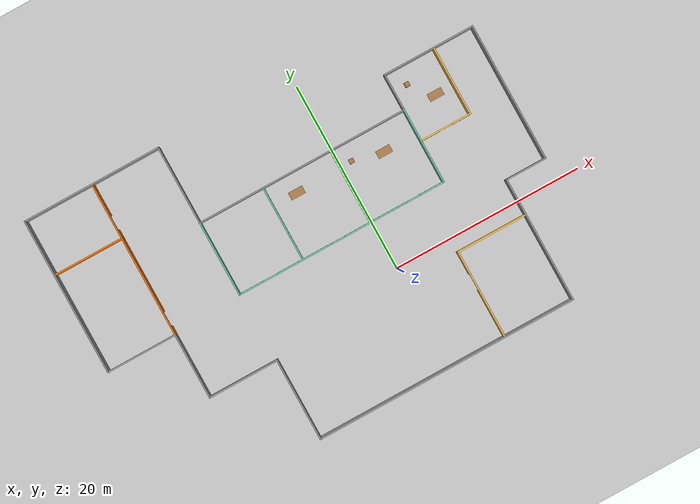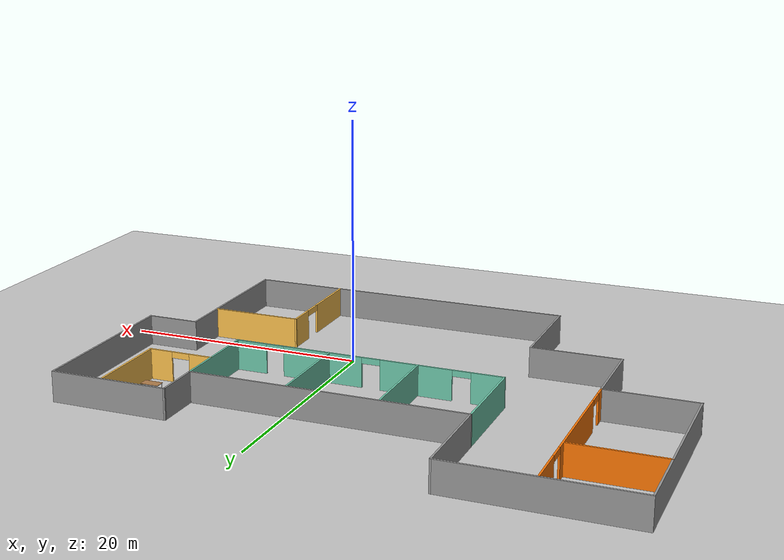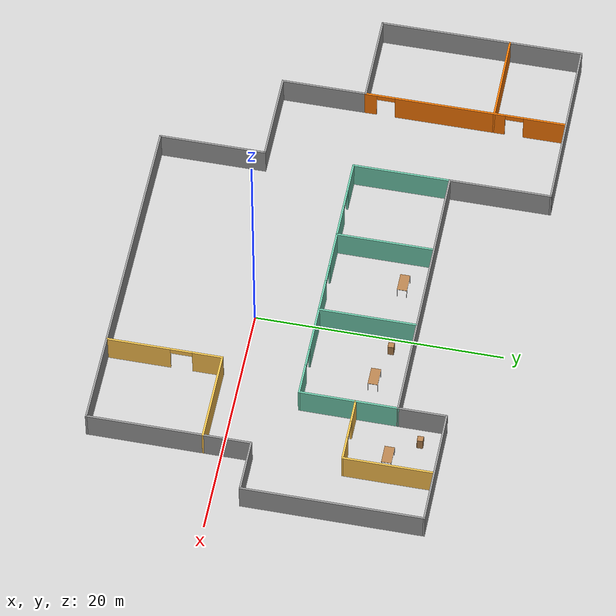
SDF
<sdf version="1.6">
 <world name="default">
  <model name="ground_plane">
   <static>1</static>
   <link name="link">
    <collision name="collision">
     <geometry><plane><normal>0 0 1</normal><size>100 100</size></plane></geometry>
     <surface><friction><ode><mu>100</mu><mu2>50</mu2></ode></friction></surface>
    </collision>
    <visual name="visual">
     <cast_shadows>0</cast_shadows>
     <geometry><plane><normal>0 0 1</normal><size>100 100</size></plane></geometry>
     <material>
      <script><uri>file://media/materials/scripts/gazebo.material</uri><name>Gazebo/Grey</name></script>
     </material>
    </visual>
   </link>
  </model>
  <model name="model">
   <pose>-5.7541 5.2784 0 0 -0 0</pose>
   <link name="Wall_10">
    <collision name="Wall_10_Collision">
     <geometry><box><size>16.6341 0.15 2.5</size></box></geometry>
     <pose>0 0 1.25 0 -0 0</pose>
    </collision>
    <visual name="Wall_10_Visual">
     <pose>0 0 1.25 0 -0 0</pose>
     <geometry><box><size>16.6341 0.15 2.5</size></box></geometry>
     <material>
      <script><uri>file://media/materials/scripts/gazebo.material</uri><name>Gazebo/Grey</name></script>
      <ambient>1 1 1 1</ambient>
     </material>
     <meta><layer>0</layer></meta>
    </visual>
    <pose>-23.275 7.725 0 0 0 -1.57079</pose>
   </link>
   <link name="Wall_11">
    <collision name="Wall_11_Collision">
     <geometry><box><size>7.5 0.15 2.5</size></box></geometry>
     <pose>0 0 1.25 0 -0 0</pose>
    </collision>
    <visual name="Wall_11_Visual">
     <pose>0 0 1.25 0 -0 0</pose>
     <geometry><box><size>7.5 0.15 2.5</size></box></geometry>
     <material>
      <script><uri>file://media/materials/scripts/gazebo.material</uri><name>Gazebo/Grey</name></script>
      <ambient>1 1 1 1</ambient>
     </material>
     <meta><layer>0</layer></meta>
    </visual>
    <pose>-19.6 -0.517 0 0 -0 1.5e-05</pose>
   </link>
   <link name="Wall_12">
    <collision name="Wall_12_Collision">
     <geometry><box><size>7 0.15 2.5</size></box></geometry>
     <pose>0 0 1.25 0 -0 0</pose>
    </collision>
    <visual name="Wall_12_Visual">
     <pose>0 0 1.25 0 -0 0</pose>
     <geometry><box><size>7 0.15 2.5</size></box></geometry>
     <material>
      <script><uri>file://media/materials/scripts/gazebo.material</uri><name>Gazebo/Grey</name></script>
      <ambient>1 1 1 1</ambient>
     </material>
     <meta><layer>0</layer></meta>
    </visual>
    <pose>-15.925 -3.942 0 0 0 -1.57077</pose>
   </link>
   <link name="Wall_13">
    <collision name="Wall_13_Collision">
     <geometry><box><size>7.5 0.15 2.5</size></box></geometry>
     <pose>0 0 1.25 0 -0 0</pose>
    </collision>
    <visual name="Wall_13_Visual">
     <pose>0 0 1.25 0 -0 0</pose>
     <geometry><box><size>7.5 0.15 2.5</size></box></geometry>
     <material>
      <script><uri>file://media/materials/scripts/gazebo.material</uri><name>Gazebo/Grey</name></script>
      <ambient>1 1 1 1</ambient>
     </material>
     <meta><layer>0</layer></meta>
    </visual>
    <pose>-12.2499 -7.36705 0 0 -0 0</pose>
   </link>
   <link name="Wall_14">
    <collision name="Wall_14_Collision">
     <geometry><box><size>8.75 0.15 2.5</size></box></geometry>
     <pose>0 0 1.25 0 -0 0</pose>
    </collision>
    <visual name="Wall_14_Visual">
     <pose>0 0 1.25 0 -0 0</pose>
     <geometry><box><size>8.75 0.15 2.5</size></box></geometry>
     <material>
      <script><uri>file://media/materials/scripts/gazebo.material</uri><name>Gazebo/Grey</name></script>
      <ambient>1 1 1 1</ambient>
     </material>
     <meta><layer>0</layer></meta>
    </visual>
    <pose>-8.57488 -11.6671 0 0 0 -1.5708</pose>
   </link>
   <link name="Wall_15">
    <collision name="Wall_15_Collision">
     <geometry><box><size>27.75 0.15 2.5</size></box></geometry>
     <pose>0 0 1.25 0 -0 0</pose>
    </collision>
    <visual name="Wall_15_Visual">
     <pose>0 0 1.25 0 -0 0</pose>
     <geometry><box><size>27.75 0.15 2.5</size></box></geometry>
     <material>
      <script><uri>file://media/materials/scripts/gazebo.material</uri><name>Gazebo/Grey</name></script>
      <ambient>1 1 1 1</ambient>
     </material>
     <meta><layer>0</layer></meta>
    </visual>
    <pose>5.22512 -15.9671 0 0 -0 0</pose>
   </link>
   <link name="Wall_17">
    <collision name="Wall_17_Collision">
     <geometry><box><size>13.25 0.15 2.5</size></box></geometry>
     <pose>0 0 1.25 0 -0 0</pose>
    </collision>
    <visual name="Wall_17_Visual">
     <pose>0 0 1.25 0 -0 0</pose>
     <geometry><box><size>13.25 0.15 2.5</size></box></geometry>
     <material>
      <script><uri>file://media/materials/scripts/gazebo.material</uri><name>Gazebo/Grey</name></script>
      <ambient>1 1 1 1</ambient>
     </material>
     <meta><layer>0</layer></meta>
    </visual>
    <pose>19.025 -9.417 0 0 -0 1.57081</pose>
   </link>
   <link name="Wall_18">
    <collision name="Wall_18_Collision">
     <geometry><box><size>4.4 0.15 2.5</size></box></geometry>
     <pose>0 0 1.25 0 -0 0</pose>
    </collision>
    <visual name="Wall_18_Visual">
     <pose>0 0 1.25 0 -0 0</pose>
     <geometry><box><size>4.4 0.15 2.5</size></box></geometry>
     <material>
      <script><uri>file://media/materials/scripts/gazebo.material</uri><name>Gazebo/Grey</name></script>
      <ambient>1 1 1 1</ambient>
     </material>
     <meta><layer>0</layer></meta>
    </visual>
    <pose>21.15 -2.86694 0 0 -0 0</pose>
   </link>
   <link name="Wall_20">
    <collision name="Wall_20_Collision">
     <geometry><box><size>8 0.15 2.5</size></box></geometry>
     <pose>0 0 1.25 0 -0 0</pose>
    </collision>
    <visual name="Wall_20_Visual">
     <pose>0 0 1.25 0 -0 0</pose>
     <geometry><box><size>8 0.15 2.5</size></box></geometry>
     <material>
      <script><uri>file://media/materials/scripts/gazebo.material</uri><name>Gazebo/Grey</name></script>
      <ambient>0.435294 0.796078 0.67451 1</ambient>
     </material>
     <meta><layer>0</layer></meta>
    </visual>
    <pose>-8.67504 3.79406 0 0 0 -1.5708</pose>
   </link>
   <link name="Wall_21">
    <pose>2.48846 -0.130945 0 0 -0 0</pose>
    <visual name="Wall_21_Visual_0">
     <pose>-9.88927 0 1.25 0 -0 0</pose>
     <geometry><box><size>2.69894 0.15 2.5</size></box></geometry>
     <material>
      <script><uri>file://media/materials/scripts/gazebo.material</uri><name>Gazebo/Grey</name></script>
      <ambient>0.435294 0.796078 0.67451 1</ambient>
     </material>
     <meta><layer>0</layer></meta>
    </visual>
    <collision name="Wall_21_Collision_0">
     <geometry><box><size>2.69894 0.15 2.5</size></box></geometry>
     <pose>-9.88927 0 1.25 0 -0 0</pose>
    </collision>
    <visual name="Wall_21_Visual_1">
     <pose>-4.08434 0 1.25 0 -0 0</pose>
     <geometry><box><size>5.91093 0.15 2.5</size></box></geometry>
     <material>
      <script><uri>file://media/materials/scripts/gazebo.material</uri><name>Gazebo/Grey</name></script>
      <ambient>0.435294 0.796078 0.67451 1</ambient>
     </material>
     <meta><layer>0</layer></meta>
    </visual>
    <collision name="Wall_21_Collision_1">
     <geometry><box><size>5.91093 0.15 2.5</size></box></geometry>
     <pose>-4.08434 0 1.25 0 -0 0</pose>
    </collision>
    <visual name="Wall_21_Visual_2">
     <pose>3.7245 0 1.25 0 -0 0</pose>
     <geometry><box><size>6.70674 0.15 2.5</size></box></geometry>
     <material>
      <script><uri>file://media/materials/scripts/gazebo.material</uri><name>Gazebo/Grey</name></script>
      <ambient>0.435294 0.796078 0.67451 1</ambient>
     </material>
     <meta><layer>0</layer></meta>
    </visual>
    <collision name="Wall_21_Collision_2">
     <geometry><box><size>6.70674 0.15 2.5</size></box></geometry>
     <pose>3.7245 0 1.25 0 -0 0</pose>
    </collision>
    <visual name="Wall_21_Visual_3">
     <pose>9.9083 0 1.25 0 -0 0</pose>
     <geometry><box><size>2.66088 0.15 2.5</size></box></geometry>
     <material>
      <script><uri>file://media/materials/scripts/gazebo.material</uri><name>Gazebo/Grey</name></script>
      <ambient>0.435294 0.796078 0.67451 1</ambient>
     </material>
     <meta><layer>0</layer></meta>
    </visual>
    <collision name="Wall_21_Collision_3">
     <geometry><box><size>2.66088 0.15 2.5</size></box></geometry>
     <pose>9.9083 0 1.25 0 -0 0</pose>
    </collision>
    <visual name="Wall_21_Visual_4">
     <pose>-7.7898 0 2.25 0 -0 0</pose>
     <geometry><box><size>1.5 0.15 0.5</size></box></geometry>
     <material>
      <script><uri>file://media/materials/scripts/gazebo.material</uri><name>Gazebo/Grey</name></script>
      <ambient>0.435294 0.796078 0.67451 1</ambient>
     </material>
     <meta><layer>0</layer></meta>
    </visual>
    <collision name="Wall_21_Collision_4">
     <geometry><box><size>1.5 0.15 0.5</size></box></geometry>
     <pose>-7.7898 0 2.25 0 -0 0</pose>
    </collision>
    <visual name="Wall_21_Visual_5">
     <pose>-0.378872 0 2.25 0 -0 0</pose>
     <geometry><box><size>1.5 0.15 0.5</size></box></geometry>
     <material>
      <script><uri>file://media/materials/scripts/gazebo.material</uri><name>Gazebo/Grey</name></script>
      <ambient>0.435294 0.796078 0.67451 1</ambient>
     </material>
     <meta><layer>0</layer></meta>
    </visual>
    <collision name="Wall_21_Collision_5">
     <geometry><box><size>1.5 0.15 0.5</size></box></geometry>
     <pose>-0.378872 0 2.25 0 -0 0</pose>
    </collision>
    <visual name="Wall_21_Visual_6">
     <pose>7.82787 0 2.25 0 -0 0</pose>
     <geometry><box><size>1.5 0.15 0.5</size></box></geometry>
     <material>
      <script><uri>file://media/materials/scripts/gazebo.material</uri><name>Gazebo/Grey</name></script>
      <ambient>0.435294 0.796078 0.67451 1</ambient>
     </material>
     <meta><layer>0</layer></meta>
    </visual>
    <collision name="Wall_21_Collision_6">
     <geometry><box><size>1.5 0.15 0.5</size></box></geometry>
     <pose>7.82787 0 2.25 0 -0 0</pose>
    </collision>
   </link>
   <link name="Wall_22">
    <collision name="Wall_22_Collision">
     <geometry><box><size>8.01356 0.15 2.5</size></box></geometry>
     <pose>0 0 1.25 0 -0 0</pose>
    </collision>
    <visual name="Wall_22_Visual">
     <pose>0 0 1.25 0 -0 0</pose>
     <geometry><box><size>8.01356 0.15 2.5</size></box></geometry>
     <material>
      <script><uri>file://media/materials/scripts/gazebo.material</uri><name>Gazebo/Grey</name></script>
      <ambient>0.435294 0.796078 0.67451 1</ambient>
     </material>
     <meta><layer>0</layer></meta>
    </visual>
    <pose>13.6635 3.80105 0 0 -0 1.56787</pose>
   </link>
   <link name="Wall_24">
    <collision name="Wall_24_Collision">
     <geometry><box><size>7.95 0.15 2.5</size></box></geometry>
     <pose>0 0 1.25 0 -0 0</pose>
    </collision>
    <visual name="Wall_24_Visual">
     <pose>0 0 1.25 0 -0 0</pose>
     <geometry><box><size>7.95 0.15 2.5</size></box></geometry>
     <material>
      <script><uri>file://media/materials/scripts/gazebo.material</uri><name>Gazebo/Grey</name></script>
      <ambient>0.435294 0.796078 0.67451 1</ambient>
     </material>
     <meta><layer>0</layer></meta>
    </visual>
    <pose>-1.75004 3.76905 0 0 0 -1.5708</pose>
   </link>
   <link name="Wall_26">
    <collision name="Wall_26_Collision">
     <geometry><box><size>7.945 0.15 2.5</size></box></geometry>
     <pose>0 0 1.25 0 -0 0</pose>
    </collision>
    <visual name="Wall_26_Visual">
     <pose>0 0 1.25 0 -0 0</pose>
     <geometry><box><size>7.945 0.15 2.5</size></box></geometry>
     <material>
      <script><uri>file://media/materials/scripts/gazebo.material</uri><name>Gazebo/Grey</name></script>
      <ambient>0.435294 0.796078 0.67451 1</ambient>
     </material>
     <meta><layer>0</layer></meta>
    </visual>
    <pose>5.64896 3.76655 0 0 0 -1.5708</pose>
   </link>
   <link name="Wall_28">
    <pose>-15.925 7.65806 0 0 -0 1.5708</pose>
    <visual name="Wall_28_Visual_0">
     <pose>-7.74683 0 1.25 0 -0 0</pose>
     <geometry><box><size>1.00633 0.15 2.5</size></box></geometry>
     <material>
      <script><uri>file://media/materials/scripts/gazebo.material</uri><name>Gazebo/Grey</name></script>
      <ambient>0.996078 0.47451 0.0196078 1</ambient>
     </material>
     <meta><layer>0</layer></meta>
    </visual>
    <collision name="Wall_28_Collision_0">
     <geometry><box><size>1.00633 0.15 2.5</size></box></geometry>
     <pose>-7.74683 0 1.25 0 -0 0</pose>
    </collision>
    <visual name="Wall_28_Visual_1">
     <pose>-1.21167 0 1.25 0 -0 0</pose>
     <geometry><box><size>9.06399 0.15 2.5</size></box></geometry>
     <material>
      <script><uri>file://media/materials/scripts/gazebo.material</uri><name>Gazebo/Grey</name></script>
      <ambient>0.996078 0.47451 0.0196078 1</ambient>
     </material>
     <meta><layer>0</layer></meta>
    </visual>
    <collision name="Wall_28_Collision_1">
     <geometry><box><size>9.06399 0.15 2.5</size></box></geometry>
     <pose>-1.21167 0 1.25 0 -0 0</pose>
    </collision>
    <visual name="Wall_28_Visual_2">
     <pose>6.53516 0 1.25 0 -0 0</pose>
     <geometry><box><size>3.42968 0.15 2.5</size></box></geometry>
     <material>
      <script><uri>file://media/materials/scripts/gazebo.material</uri><name>Gazebo/Grey</name></script>
      <ambient>0.996078 0.47451 0.0196078 1</ambient>
     </material>
     <meta><layer>0</layer></meta>
    </visual>
    <collision name="Wall_28_Collision_2">
     <geometry><box><size>3.42968 0.15 2.5</size></box></geometry>
     <pose>6.53516 0 1.25 0 -0 0</pose>
    </collision>
    <visual name="Wall_28_Visual_3">
     <pose>-6.49367 0 2.25 0 -0 0</pose>
     <geometry><box><size>1.5 0.15 0.5</size></box></geometry>
     <material>
      <script><uri>file://media/materials/scripts/gazebo.material</uri><name>Gazebo/Grey</name></script>
      <ambient>0.996078 0.47451 0.0196078 1</ambient>
     </material>
     <meta><layer>0</layer></meta>
    </visual>
    <collision name="Wall_28_Collision_3">
     <geometry><box><size>1.5 0.15 0.5</size></box></geometry>
     <pose>-6.49367 0 2.25 0 -0 0</pose>
    </collision>
    <visual name="Wall_28_Visual_4">
     <pose>4.07032 0 2.25 0 -0 0</pose>
     <geometry><box><size>1.5 0.15 0.5</size></box></geometry>
     <material>
      <script><uri>file://media/materials/scripts/gazebo.material</uri><name>Gazebo/Grey</name></script>
      <ambient>0.996078 0.47451 0.0196078 1</ambient>
     </material>
     <meta><layer>0</layer></meta>
    </visual>
    <collision name="Wall_28_Collision_4">
     <geometry><box><size>1.5 0.15 0.5</size></box></geometry>
     <pose>4.07032 0 2.25 0 -0 0</pose>
    </collision>
   </link>
   <link name="Wall_3">
    <collision name="Wall_3_Collision">
     <geometry><box><size>14.5999 0.15 2.5</size></box></geometry>
     <pose>0 0 1.25 0 -0 0</pose>
    </collision>
    <visual name="Wall_3_Visual">
     <pose>0 0 1.25 0 -0 0</pose>
     <geometry><box><size>14.5999 0.15 2.5</size></box></geometry>
     <material>
      <script><uri>file://media/materials/scripts/gazebo.material</uri><name>Gazebo/Grey</name></script>
      <ambient>1 1 1 1</ambient>
     </material>
     <meta><layer>0</layer></meta>
    </visual>
    <pose>23.275 4.35806 0 0 -0 1.5708</pose>
   </link>
   <link name="Wall_30">
    <collision name="Wall_30_Collision">
     <geometry><box><size>7.471 0.15 2.5</size></box></geometry>
     <pose>0 0 1.25 0 -0 0</pose>
    </collision>
    <visual name="Wall_30_Visual">
     <pose>0 0 1.25 0 -0 0</pose>
     <geometry><box><size>7.471 0.15 2.5</size></box></geometry>
     <material>
      <script><uri>file://media/materials/scripts/gazebo.material</uri><name>Gazebo/Grey</name></script>
      <ambient>0.996078 0.47451 0.0196078 1</ambient>
     </material>
     <meta><layer>0</layer></meta>
    </visual>
    <pose>-19.5855 10.0661 0 0 -0 0</pose>
   </link>
   <link name="Wall_32">
    <collision name="Wall_32_Collision">
     <geometry><box><size>7.25 0.15 2.5</size></box></geometry>
     <pose>0 0 1.25 0 -0 0</pose>
    </collision>
    <visual name="Wall_32_Visual">
     <pose>0 0 1.25 0 -0 0</pose>
     <geometry><box><size>7.25 0.15 2.5</size></box></geometry>
     <material>
      <script><uri>file://media/materials/scripts/gazebo.material</uri><name>Gazebo/Grey</name></script>
      <ambient>1 0.764706 0.305882 1</ambient>
     </material>
     <meta><layer>0</layer></meta>
    </visual>
    <pose>19.033 7.91005 0 0 0 -1.5708</pose>
   </link>
   <link name="Wall_33">
    <pose>16.358 4.36006 0 0 -0 3.14159</pose>
    <visual name="Wall_33_Visual_0">
     <pose>-1.73876 0 1.25 0 -0 0</pose>
     <geometry><box><size>2.02248 0.15 2.5</size></box></geometry>
     <material>
      <script><uri>file://media/materials/scripts/gazebo.material</uri><name>Gazebo/Grey</name></script>
      <ambient>1 0.764706 0.305882 1</ambient>
     </material>
     <meta><layer>0</layer></meta>
    </visual>
    <collision name="Wall_33_Collision_0">
     <geometry><box><size>2.02248 0.15 2.5</size></box></geometry>
     <pose>-1.73876 0 1.25 0 -0 0</pose>
    </collision>
    <visual name="Wall_33_Visual_1">
     <pose>1.76124 0 1.25 0 -0 0</pose>
     <geometry><box><size>1.97752 0.15 2.5</size></box></geometry>
     <material>
      <script><uri>file://media/materials/scripts/gazebo.material</uri><name>Gazebo/Grey</name></script>
      <ambient>1 0.764706 0.305882 1</ambient>
     </material>
     <meta><layer>0</layer></meta>
    </visual>
    <collision name="Wall_33_Collision_1">
     <geometry><box><size>1.97752 0.15 2.5</size></box></geometry>
     <pose>1.76124 0 1.25 0 -0 0</pose>
    </collision>
    <visual name="Wall_33_Visual_2">
     <pose>0.022481 0 2.25 0 -0 0</pose>
     <geometry><box><size>1.5 0.15 0.5</size></box></geometry>
     <material>
      <script><uri>file://media/materials/scripts/gazebo.material</uri><name>Gazebo/Grey</name></script>
      <ambient>1 0.764706 0.305882 1</ambient>
     </material>
     <meta><layer>0</layer></meta>
    </visual>
    <collision name="Wall_33_Collision_2">
     <geometry><box><size>1.5 0.15 0.5</size></box></geometry>
     <pose>0.022481 0 2.25 0 -0 0</pose>
    </collision>
   </link>
   <link name="Wall_36">
    <collision name="Wall_36_Collision">
     <geometry><box><size>7.572 0.15 2.5</size></box></geometry>
     <pose>0 0 1.25 0 -0 0</pose>
    </collision>
    <visual name="Wall_36_Visual">
     <pose>0 0 1.25 0 -0 0</pose>
     <geometry><box><size>7.572 0.15 2.5</size></box></geometry>
     <material>
      <script><uri>file://media/materials/scripts/gazebo.material</uri><name>Gazebo/Grey</name></script>
      <ambient>1 0.764706 0.305882 1</ambient>
     </material>
     <meta><layer>0</layer></meta>
    </visual>
    <pose>15.314 -6.68694 0 0 -0 0</pose>
   </link>
   <link name="Wall_38">
    <pose>11.603 -11.3269 0 0 0 -1.5708</pose>
    <visual name="Wall_38_Visual_0">
     <pose>-3.47456 0 1.25 0 -0 0</pose>
     <geometry><box><size>2.48088 0.15 2.5</size></box></geometry>
     <material>
      <script><uri>file://media/materials/scripts/gazebo.material</uri><name>Gazebo/Grey</name></script>
      <ambient>1 0.764706 0.305882 1</ambient>
     </material>
     <meta><layer>0</layer></meta>
    </visual>
    <collision name="Wall_38_Collision_0">
     <geometry><box><size>2.48088 0.15 2.5</size></box></geometry>
     <pose>-3.47456 0 1.25 0 -0 0</pose>
    </collision>
    <visual name="Wall_38_Visual_1">
     <pose>2.11544 0 1.25 0 -0 0</pose>
     <geometry><box><size>5.19912 0.15 2.5</size></box></geometry>
     <material>
      <script><uri>file://media/materials/scripts/gazebo.material</uri><name>Gazebo/Grey</name></script>
      <ambient>1 0.764706 0.305882 1</ambient>
     </material>
     <meta><layer>0</layer></meta>
    </visual>
    <collision name="Wall_38_Collision_1">
     <geometry><box><size>5.19912 0.15 2.5</size></box></geometry>
     <pose>2.11544 0 1.25 0 -0 0</pose>
    </collision>
    <visual name="Wall_38_Visual_2">
     <pose>-1.35912 0 2.25 0 -0 0</pose>
     <geometry><box><size>1.75 0.15 0.5</size></box></geometry>
     <material>
      <script><uri>file://media/materials/scripts/gazebo.material</uri><name>Gazebo/Grey</name></script>
      <ambient>1 0.764706 0.305882 1</ambient>
     </material>
     <meta><layer>0</layer></meta>
    </visual>
    <collision name="Wall_38_Collision_2">
     <geometry><box><size>1.75 0.15 0.5</size></box></geometry>
     <pose>-1.35912 0 2.25 0 -0 0</pose>
    </collision>
   </link>
   <link name="Wall_5">
    <collision name="Wall_5_Collision">
     <geometry><box><size>9.75 0.15 2.5</size></box></geometry>
     <pose>0 0 1.25 0 -0 0</pose>
    </collision>
    <visual name="Wall_5_Visual">
     <pose>0 0 1.25 0 -0 0</pose>
     <geometry><box><size>9.75 0.15 2.5</size></box></geometry>
     <material>
      <script><uri>file://media/materials/scripts/gazebo.material</uri><name>Gazebo/Grey</name></script>
      <ambient>1 1 1 1</ambient>
     </material>
     <meta><layer>0</layer></meta>
    </visual>
    <pose>18.475 11.583 0 0 0 -3.14158</pose>
   </link>
   <link name="Wall_6">
    <collision name="Wall_6_Collision">
     <geometry><box><size>4 0.15 2.5</size></box></geometry>
     <pose>0 0 1.25 0 -0 0</pose>
    </collision>
    <visual name="Wall_6_Visual">
     <pose>0 0 1.25 0 -0 0</pose>
     <geometry><box><size>4 0.15 2.5</size></box></geometry>
     <material>
      <script><uri>file://media/materials/scripts/gazebo.material</uri><name>Gazebo/Grey</name></script>
      <ambient>1 1 1 1</ambient>
     </material>
     <meta><layer>0</layer></meta>
    </visual>
    <pose>13.675 9.658 0 0 0 -1.57084</pose>
   </link>
   <link name="Wall_7">
    <collision name="Wall_7_Collision">
     <geometry><box><size>22.5 0.15 2.5</size></box></geometry>
     <pose>0 0 1.25 0 -0 0</pose>
    </collision>
    <visual name="Wall_7_Visual">
     <pose>0 0 1.25 0 -0 0</pose>
     <geometry><box><size>22.5 0.15 2.5</size></box></geometry>
     <material>
      <script><uri>file://media/materials/scripts/gazebo.material</uri><name>Gazebo/Grey</name></script>
      <ambient>1 1 1 1</ambient>
     </material>
     <meta><layer>0</layer></meta>
    </visual>
    <pose>2.49996 7.73306 0 0 -0 3.14159</pose>
   </link>
   <link name="Wall_8">
    <collision name="Wall_8_Collision">
     <geometry><box><size>8.384 0.15 2.5</size></box></geometry>
     <pose>0 0 1.25 0 -0 0</pose>
    </collision>
    <visual name="Wall_8_Visual">
     <pose>0 0 1.25 0 -0 0</pose>
     <geometry><box><size>8.384 0.15 2.5</size></box></geometry>
     <material>
      <script><uri>file://media/materials/scripts/gazebo.material</uri><name>Gazebo/Grey</name></script>
      <ambient>1 1 1 1</ambient>
     </material>
     <meta><layer>0</layer></meta>
    </visual>
    <pose>-8.67504 11.8501 0 0 -0 1.5708</pose>
   </link>
   <link name="Wall_9">
    <collision name="Wall_9_Collision">
     <geometry><box><size>14.75 0.15 2.5</size></box></geometry>
     <pose>0 0 1.25 0 -0 0</pose>
    </collision>
    <visual name="Wall_9_Visual">
     <pose>0 0 1.25 0 -0 0</pose>
     <geometry><box><size>14.75 0.15 2.5</size></box></geometry>
     <material>
      <script><uri>file://media/materials/scripts/gazebo.material</uri><name>Gazebo/Grey</name></script>
      <ambient>1 1 1 1</ambient>
     </material>
     <meta><layer>0</layer></meta>
    </visual>
    <pose>-15.975 15.9671 0 0 -0 3.14159</pose>
   </link>
   <static>1</static>
  </model>
  <model name="cabinet_0">
   <static>1</static>
   <link name="cabinet_bottom_plate">
    <inertial>
     <pose>0 0 -1 0 -0 0</pose>
     <inertia><ixx>2.05</ixx><ixy>0</ixy><ixz>0</ixz><iyy>2.05</iyy><iyz>0</iyz><izz>2.05</izz></inertia>
     <mass>25</mass>
    </inertial>
    <collision name="cabinet_bottom_plate_geom">
     <pose>0 0 0.01 0 -0 0</pose>
     <geometry><box><size>0.45 0.45 0.02</size></box></geometry>
    </collision>
    <visual name="cabinet_bottom_plate_geom_visual">
     <pose>0 0 0.01 0 -0 0</pose>
     <geometry><box><size>0.45 0.45 0.02</size></box></geometry>
     <material>
      <script><uri>file://media/materials/scripts/gazebo.material</uri><name>Gazebo/Wood</name></script>
     </material>
    </visual>
    <collision name="cabinet_bottom_plate_geom_cabinet_back_plate">
     <pose>0.235 0 0.51 0 -0 0</pose>
     <geometry><box><size>0.02 0.45 1.02</size></box></geometry>
    </collision>
    <visual name="cabinet_bottom_plate_geom_cabinet_back_plate_visual">
     <pose>0.235 0 0.51 0 -0 0</pose>
     <geometry><box><size>0.02 0.45 1.02</size></box></geometry>
     <material>
      <script><uri>file://media/materials/scripts/gazebo.material</uri><name>Gazebo/Wood</name></script>
     </material>
    </visual>
    <collision name="cabinet_bottom_plate_geom_cabinet_left_plate">
     <pose>0 0.235 0.51 0 -0 0</pose>
     <geometry><box><size>0.45 0.02 1.02</size></box></geometry>
    </collision>
    <visual name="cabinet_bottom_plate_geom_cabinet_left_plate_visual">
     <pose>0 0.235 0.51 0 -0 0</pose>
     <geometry><box><size>0.45 0.02 1.02</size></box></geometry>
     <material>
      <script><uri>file://media/materials/scripts/gazebo.material</uri><name>Gazebo/Wood</name></script>
     </material>
    </visual>
    <collision name="cabinet_bottom_plate_geom_cabinet_middle_plate">
     <pose>0 0 0.51 0 -0 0</pose>
     <geometry><box><size>0.45 0.45 0.02</size></box></geometry>
    </collision>
    <visual name="cabinet_bottom_plate_geom_cabinet_middle_plate_visual">
     <pose>0 0 0.51 0 -0 0</pose>
     <geometry><box><size>0.45 0.45 0.02</size></box></geometry>
     <material>
      <script><uri>file://media/materials/scripts/gazebo.material</uri><name>Gazebo/Wood</name></script>
     </material>
    </visual>
    <collision name="cabinet_bottom_plate_geom_cabinet_right_plate">
     <pose>0 -0.235 0.51 0 -0 0</pose>
     <geometry><box><size>0.45 0.02 1.02</size></box></geometry>
    </collision>
    <visual name="cabinet_bottom_plate_geom_cabinet_right_plate_visual">
     <pose>0 -0.235 0.51 0 -0 0</pose>
     <geometry><box><size>0.45 0.02 1.02</size></box></geometry>
     <material>
      <script><uri>file://media/materials/scripts/gazebo.material</uri><name>Gazebo/Wood</name></script>
     </material>
    </visual>
    <collision name="cabinet_bottom_plate_geom_cabinet_top_plate">
     <pose>0 0 1.01 0 -0 0</pose>
     <geometry><box><size>0.45 0.45 0.02</size></box></geometry>
    </collision>
    <visual name="cabinet_bottom_plate_geom_cabinet_top_plate_visual">
     <pose>0 0 1.01 0 -0 0</pose>
     <geometry><box><size>0.45 0.45 0.02</size></box></geometry>
     <material>
      <script><uri>file://media/materials/scripts/gazebo.material</uri><name>Gazebo/Wood</name></script>
     </material>
    </visual>
   </link>
   <pose>1.17551 11.2026 0 0 -0 0</pose>
  </model>
  <model name="cabinet_1">
   <static>1</static>
   <link name="cabinet_bottom_plate">
    <inertial>
     <pose>0 0 -1 0 -0 0</pose>
     <inertia><ixx>2.05</ixx><ixy>0</ixy><ixz>0</ixz><iyy>2.05</iyy><iyz>0</iyz><izz>2.05</izz></inertia>
     <mass>25</mass>
    </inertial>
    <collision name="cabinet_bottom_plate_geom">
     <pose>0 0 0.01 0 -0 0</pose>
     <geometry><box><size>0.45 0.45 0.02</size></box></geometry>
    </collision>
    <visual name="cabinet_bottom_plate_geom_visual">
     <pose>0 0 0.01 0 -0 0</pose>
     <geometry><box><size>0.45 0.45 0.02</size></box></geometry>
     <material>
      <script><uri>file://media/materials/scripts/gazebo.material</uri><name>Gazebo/Wood</name></script>
     </material>
    </visual>
    <collision name="cabinet_bottom_plate_geom_cabinet_back_plate">
     <pose>0.235 0 0.51 0 -0 0</pose>
     <geometry><box><size>0.02 0.45 1.02</size></box></geometry>
    </collision>
    <visual name="cabinet_bottom_plate_geom_cabinet_back_plate_visual">
     <pose>0.235 0 0.51 0 -0 0</pose>
     <geometry><box><size>0.02 0.45 1.02</size></box></geometry>
     <material>
      <script><uri>file://media/materials/scripts/gazebo.material</uri><name>Gazebo/Wood</name></script>
     </material>
    </visual>
    <collision name="cabinet_bottom_plate_geom_cabinet_left_plate">
     <pose>0 0.235 0.51 0 -0 0</pose>
     <geometry><box><size>0.45 0.02 1.02</size></box></geometry>
    </collision>
    <visual name="cabinet_bottom_plate_geom_cabinet_left_plate_visual">
     <pose>0 0.235 0.51 0 -0 0</pose>
     <geometry><box><size>0.45 0.02 1.02</size></box></geometry>
     <material>
      <script><uri>file://media/materials/scripts/gazebo.material</uri><name>Gazebo/Wood</name></script>
     </material>
    </visual>
    <collision name="cabinet_bottom_plate_geom_cabinet_middle_plate">
     <pose>0 0 0.51 0 -0 0</pose>
     <geometry><box><size>0.45 0.45 0.02</size></box></geometry>
    </collision>
    <visual name="cabinet_bottom_plate_geom_cabinet_middle_plate_visual">
     <pose>0 0 0.51 0 -0 0</pose>
     <geometry><box><size>0.45 0.45 0.02</size></box></geometry>
     <material>
      <script><uri>file://media/materials/scripts/gazebo.material</uri><name>Gazebo/Wood</name></script>
     </material>
    </visual>
    <collision name="cabinet_bottom_plate_geom_cabinet_right_plate">
     <pose>0 -0.235 0.51 0 -0 0</pose>
     <geometry><box><size>0.45 0.02 1.02</size></box></geometry>
    </collision>
    <visual name="cabinet_bottom_plate_geom_cabinet_right_plate_visual">
     <pose>0 -0.235 0.51 0 -0 0</pose>
     <geometry><box><size>0.45 0.02 1.02</size></box></geometry>
     <material>
      <script><uri>file://media/materials/scripts/gazebo.material</uri><name>Gazebo/Wood</name></script>
     </material>
    </visual>
    <collision name="cabinet_bottom_plate_geom_cabinet_top_plate">
     <pose>0 0 1.01 0 -0 0</pose>
     <geometry><box><size>0.45 0.45 0.02</size></box></geometry>
    </collision>
    <visual name="cabinet_bottom_plate_geom_cabinet_top_plate_visual">
     <pose>0 0 1.01 0 -0 0</pose>
     <geometry><box><size>0.45 0.45 0.02</size></box></geometry>
     <material>
      <script><uri>file://media/materials/scripts/gazebo.material</uri><name>Gazebo/Wood</name></script>
     </material>
    </visual>
   </link>
   <pose>9.42911 15.0821 0 0 -0 0</pose>
  </model>
  <model name="table_1">
   <static>1</static>
   <link name="link">
    <collision name="surface">
     <pose>0 0 1 0 -0 0</pose>
     <geometry><box><size>1.5 0.8 0.03</size></box></geometry>
     <surface><friction><ode><mu>0.6</mu><mu2>0.6</mu2></ode></friction></surface>
    </collision>
    <visual name="visual1">
     <pose>0 0 1 0 -0 0</pose>
     <geometry><box><size>1.5 0.8 0.03</size></box></geometry>
     <material>
      <script><uri>file://media/materials/scripts/gazebo.material</uri><name>Gazebo/Wood</name></script>
     </material>
    </visual>
    <collision name="front_left_leg">
     <pose>0.68 0.38 0.5 0 -0 0</pose>
     <geometry><cylinder><radius>0.02</radius><length>1</length></cylinder></geometry>
    </collision>
    <visual name="front_left_leg">
     <pose>0.68 0.38 0.5 0 -0 0</pose>
     <geometry><cylinder><radius>0.02</radius><length>1</length></cylinder></geometry>
     <material>
      <script><uri>file://media/materials/scripts/gazebo.material</uri><name>Gazebo/Grey</name></script>
     </material>
    </visual>
    <collision name="front_right_leg">
     <pose>0.68 -0.38 0.5 0 -0 0</pose>
     <geometry><cylinder><radius>0.02</radius><length>1</length></cylinder></geometry>
    </collision>
    <visual name="front_right_leg">
     <pose>0.68 -0.38 0.5 0 -0 0</pose>
     <geometry><cylinder><radius>0.02</radius><length>1</length></cylinder></geometry>
     <material>
      <script><uri>file://media/materials/scripts/gazebo.material</uri><name>Gazebo/Grey</name></script>
     </material>
    </visual>
    <collision name="back_right_leg">
     <pose>-0.68 -0.38 0.5 0 -0 0</pose>
     <geometry><cylinder><radius>0.02</radius><length>1</length></cylinder></geometry>
    </collision>
    <visual name="back_right_leg">
     <pose>-0.68 -0.38 0.5 0 -0 0</pose>
     <geometry><cylinder><radius>0.02</radius><length>1</length></cylinder></geometry>
     <material>
      <script><uri>file://media/materials/scripts/gazebo.material</uri><name>Gazebo/Grey</name></script>
     </material>
    </visual>
    <collision name="back_left_leg">
     <pose>-0.68 0.38 0.5 0 -0 0</pose>
     <geometry><cylinder><radius>0.02</radius><length>1</length></cylinder></geometry>
    </collision>
    <visual name="back_left_leg">
     <pose>-0.68 0.38 0.5 0 -0 0</pose>
     <geometry><cylinder><radius>0.02</radius><length>1</length></cylinder></geometry>
     <material>
      <script><uri>file://media/materials/scripts/gazebo.material</uri><name>Gazebo/Grey</name></script>
     </material>
    </visual>
   </link>
   <pose>-4.91298 11.059 0 0 -0 0</pose>
  </model>
  <model name="table_2">
   <static>1</static>
   <link name="link">
    <collision name="surface">
     <pose>0 0 1 0 -0 0</pose>
     <geometry><box><size>1.5 0.8 0.03</size></box></geometry>
     <surface><friction><ode><mu>0.6</mu><mu2>0.6</mu2></ode></friction></surface>
    </collision>
    <visual name="visual1">
     <pose>0 0 1 0 -0 0</pose>
     <geometry><box><size>1.5 0.8 0.03</size></box></geometry>
     <material>
      <script><uri>file://media/materials/scripts/gazebo.material</uri><name>Gazebo/Wood</name></script>
     </material>
    </visual>
    <collision name="front_left_leg">
     <pose>0.68 0.38 0.5 0 -0 0</pose>
     <geometry><cylinder><radius>0.02</radius><length>1</length></cylinder></geometry>
    </collision>
    <visual name="front_left_leg">
     <pose>0.68 0.38 0.5 0 -0 0</pose>
     <geometry><cylinder><radius>0.02</radius><length>1</length></cylinder></geometry>
     <material>
      <script><uri>file://media/materials/scripts/gazebo.material</uri><name>Gazebo/Grey</name></script>
     </material>
    </visual>
    <collision name="front_right_leg">
     <pose>0.68 -0.38 0.5 0 -0 0</pose>
     <geometry><cylinder><radius>0.02</radius><length>1</length></cylinder></geometry>
    </collision>
    <visual name="front_right_leg">
     <pose>0.68 -0.38 0.5 0 -0 0</pose>
     <geometry><cylinder><radius>0.02</radius><length>1</length></cylinder></geometry>
     <material>
      <script><uri>file://media/materials/scripts/gazebo.material</uri><name>Gazebo/Grey</name></script>
     </material>
    </visual>
    <collision name="back_right_leg">
     <pose>-0.68 -0.38 0.5 0 -0 0</pose>
     <geometry><cylinder><radius>0.02</radius><length>1</length></cylinder></geometry>
    </collision>
    <visual name="back_right_leg">
     <pose>-0.68 -0.38 0.5 0 -0 0</pose>
     <geometry><cylinder><radius>0.02</radius><length>1</length></cylinder></geometry>
     <material>
      <script><uri>file://media/materials/scripts/gazebo.material</uri><name>Gazebo/Grey</name></script>
     </material>
    </visual>
    <collision name="back_left_leg">
     <pose>-0.68 0.38 0.5 0 -0 0</pose>
     <geometry><cylinder><radius>0.02</radius><length>1</length></cylinder></geometry>
    </collision>
    <visual name="back_left_leg">
     <pose>-0.68 0.38 0.5 0 -0 0</pose>
     <geometry><cylinder><radius>0.02</radius><length>1</length></cylinder></geometry>
     <material>
      <script><uri>file://media/materials/scripts/gazebo.material</uri><name>Gazebo/Grey</name></script>
     </material>
    </visual>
   </link>
   <pose>4.36224 10.4727 0 0 -0 0</pose>
  </model>
  <model name="table_3">
   <static>1</static>
   <link name="link">
    <collision name="surface">
     <pose>0 0 1 0 -0 0</pose>
     <geometry><box><size>1.5 0.8 0.03</size></box></geometry>
     <surface><friction><ode><mu>0.6</mu><mu2>0.6</mu2></ode></friction></surface>
    </collision>
    <visual name="visual1">
     <pose>0 0 1 0 -0 0</pose>
     <geometry><box><size>1.5 0.8 0.03</size></box></geometry>
     <material>
      <script><uri>file://media/materials/scripts/gazebo.material</uri><name>Gazebo/Wood</name></script>
     </material>
    </visual>
    <collision name="front_left_leg">
     <pose>0.68 0.38 0.5 0 -0 0</pose>
     <geometry><cylinder><radius>0.02</radius><length>1</length></cylinder></geometry>
    </collision>
    <visual name="front_left_leg">
     <pose>0.68 0.38 0.5 0 -0 0</pose>
     <geometry><cylinder><radius>0.02</radius><length>1</length></cylinder></geometry>
     <material>
      <script><uri>file://media/materials/scripts/gazebo.material</uri><name>Gazebo/Grey</name></script>
     </material>
    </visual>
    <collision name="front_right_leg">
     <pose>0.68 -0.38 0.5 0 -0 0</pose>
     <geometry><cylinder><radius>0.02</radius><length>1</length></cylinder></geometry>
    </collision>
    <visual name="front_right_leg">
     <pose>0.68 -0.38 0.5 0 -0 0</pose>
     <geometry><cylinder><radius>0.02</radius><length>1</length></cylinder></geometry>
     <material>
      <script><uri>file://media/materials/scripts/gazebo.material</uri><name>Gazebo/Grey</name></script>
     </material>
    </visual>
    <collision name="back_right_leg">
     <pose>-0.68 -0.38 0.5 0 -0 0</pose>
     <geometry><cylinder><radius>0.02</radius><length>1</length></cylinder></geometry>
    </collision>
    <visual name="back_right_leg">
     <pose>-0.68 -0.38 0.5 0 -0 0</pose>
     <geometry><cylinder><radius>0.02</radius><length>1</length></cylinder></geometry>
     <material>
      <script><uri>file://media/materials/scripts/gazebo.material</uri><name>Gazebo/Grey</name></script>
     </material>
    </visual>
    <collision name="back_left_leg">
     <pose>-0.68 0.38 0.5 0 -0 0</pose>
     <geometry><cylinder><radius>0.02</radius><length>1</length></cylinder></geometry>
    </collision>
    <visual name="back_left_leg">
     <pose>-0.68 0.38 0.5 0 -0 0</pose>
     <geometry><cylinder><radius>0.02</radius><length>1</length></cylinder></geometry>
     <material>
      <script><uri>file://media/materials/scripts/gazebo.material</uri><name>Gazebo/Grey</name></script>
     </material>
    </visual>
   </link>
   <pose>11.3707 12.8834 0 0 -0 0</pose>
  </model>
 </world>
</sdf>
